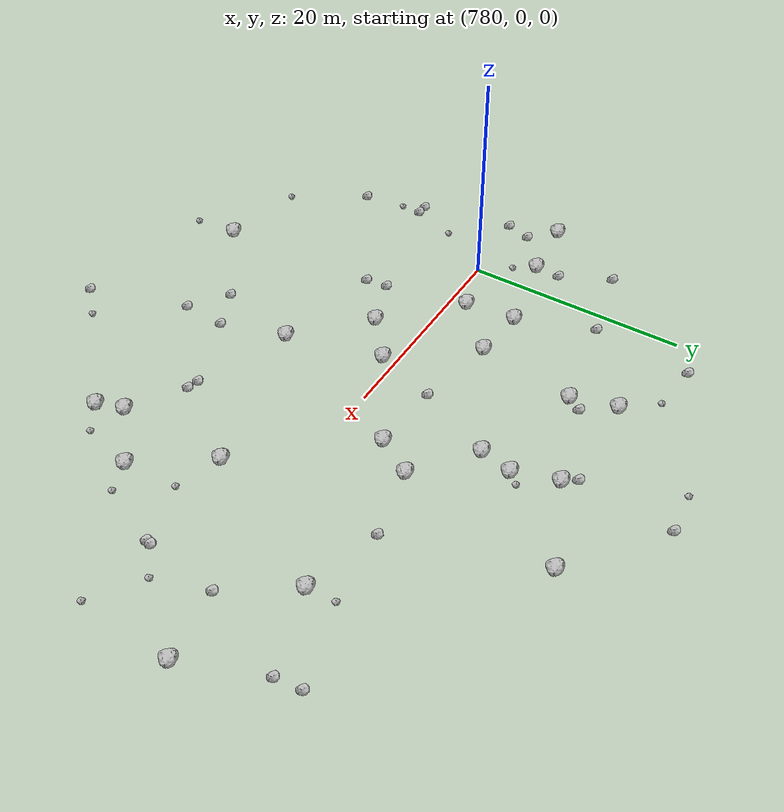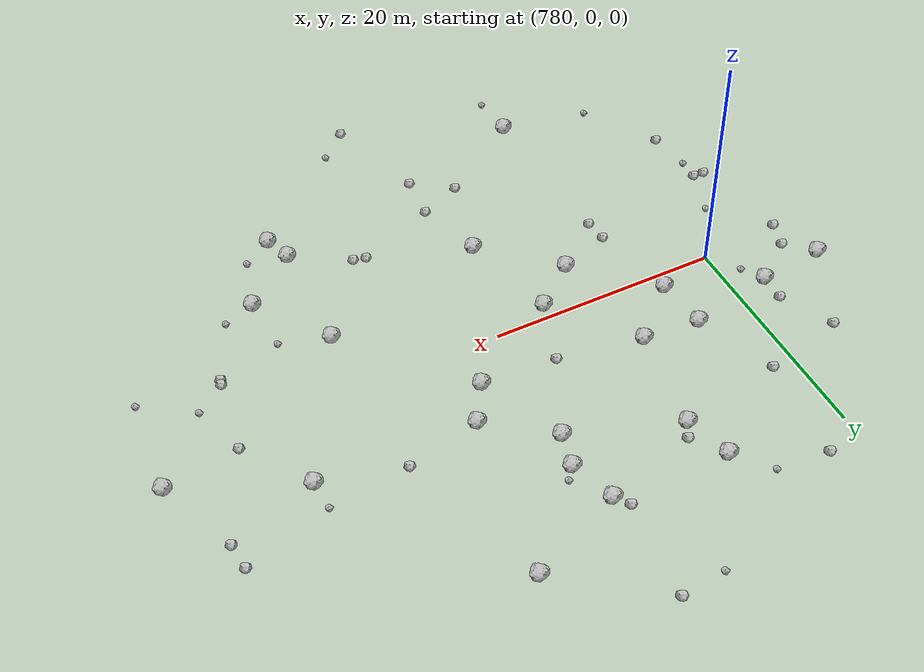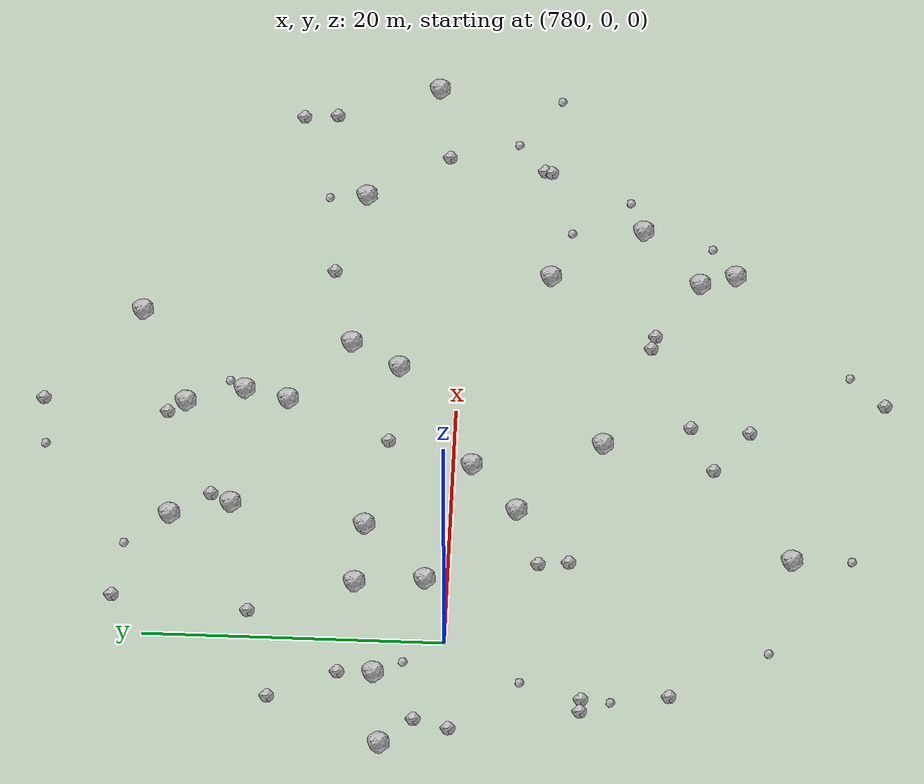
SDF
<sdf version="1.6">
 <world name="default">
  <include><uri>model://sun</uri></include>
  <model name="rock1_20_4">
   <include><uri>model://rock1</uri><pose>808.005294975532 21.88105893440632 0.5 0 0 0</pose></include>
  </model>
  <model name="rock1_20_5">
   <include><uri>model://rock1</uri><pose>795.1161935431173 -1.211626775830112 0.5 0 0 0</pose></include>
  </model>
  <model name="rock1_20_6">
   <include><uri>model://rock1</uri><pose>777.1363541725714 4.595713491415744 0.5 0 0 0</pose></include>
  </model>
  <model name="rock1_20_7">
   <include><uri>model://rock1</uri><pose>829.3146027466767 2.3546975872739893 0.5 0 0 0</pose></include>
  </model>
  <model name="rock1_20_8">
   <include><uri>model://rock1</uri><pose>784.7092967862494 6.2009895227435194 0.5 0 0 0</pose></include>
  </model>
  <model name="rock1_20_9">
   <include><uri>model://rock1</uri><pose>803.5739527494757 4.057093341304302 0.5 0 0 0</pose></include>
  </model>
  <model name="rock1_20_10">
   <include><uri>model://rock1</uri><pose>787.6287469421303 -22.864695126030263 0.5 0 0 0</pose></include>
  </model>
  <model name="rock1_20_11">
   <include><uri>model://rock1</uri><pose>790.0712022709254 18.883474183651785 0.5 0 0 0</pose></include>
  </model>
  <model name="rock1_20_12">
   <include><uri>model://rock1</uri><pose>812.1215779177766 -6.011123523359856 0.5 0 0 0</pose></include>
  </model>
  <model name="rock1_20_13">
   <include><uri>model://rock1</uri><pose>816.5313376923538 -12.299161744390705 0.5 0 0 0</pose></include>
  </model>
  <model name="rock1_20_14">
   <include><uri>model://rock1</uri><pose>799.9495576825748 18.410324494406943 0.5 0 0 0</pose></include>
  </model>
  <model name="rock1_20_15">
   <include><uri>model://rock1</uri><pose>791.2923565233662 -4.37045803544094 0.5 0 0 0</pose></include>
  </model>
  <model name="rock1_20_16">
   <include><uri>model://rock1</uri><pose>791.1790877870765 14.841674148097646 0.5 0 0 0</pose></include>
  </model>
  <model name="rock1_20_17">
   <include><uri>model://rock1</uri><pose>800.4227066664629 11.486003245103511 0.5 0 0 0</pose></include>
  </model>
  <model name="rock1_20_18">
   <include><uri>model://rock1</uri><pose>819.0993414048846 7.01554068330497 0.5 0 0 0</pose></include>
  </model>
  <model name="rock1_20_19">
   <include><uri>model://rock1</uri><pose>812.6319380371133 -18.733124779598803 0.5 0 0 0</pose></include>
  </model>
  <model name="rock1_20_20">
   <include><uri>model://rock1</uri><pose>811.8018737822158 -16.304487591812215 0.5 0 0 0</pose></include>
  </model>
  <model name="rock1_20_21">
   <include><uri>model://rock1</uri><pose>805.6434290917159 7.410183892722948 0.5 0 0 0</pose></include>
  </model>
  <model name="rock1_20_22">
   <include><uri>model://rock1</uri><pose>801.1986077073287 14.479339815743849 0.5 0 0 0</pose></include>
  </model>
  <model name="rock1_20_23">
   <include><uri>model://rock1</uri><pose>789.6602010457979 5.7776443397224355 0.5 0 0 0</pose></include>
  </model>
  <model name="rock1_20_24">
   <include><uri>model://rock1</uri><pose>785.1415866580385 1.5410929738104748 0.5 0 0 0</pose></include>
  </model>
  <model name="rock1_20_25">
   <include><uri>model://rock1</uri><pose>771.3286816281517 3.949985853152093 0.5 0 0 0</pose></include>
  </model>
  <model name="rock1_20_26">
   <include><uri>model://rock1</uri><pose>797.2485110307729 -10.004228783752534 0.5 0 0 0</pose></include>
  </model>
  <model name="rock2_20_0">
   <include><uri>model://rock2</uri><pose>797.0093255982463 4.478631640742066 0.3 0 0 0</pose></include>
  </model>
  <model name="rock2_20_1">
   <include><uri>model://rock2</uri><pose>799.0186564998713 19.585230140794053 0.3 0 0 0</pose></include>
  </model>
  <model name="rock2_20_2">
   <include><uri>model://rock2</uri><pose>798.6100396592211 -19.911984462713434 0.3 0 0 0</pose></include>
  </model>
  <model name="rock2_20_3">
   <include><uri>model://rock2</uri><pose>774.9493410605598 11.470628353879341 0.3 0 0 0</pose></include>
  </model>
  <model name="rock2_20_4">
   <include><uri>model://rock2</uri><pose>805.8846716411568 -13.080289601071502 0.3 0 0 0</pose></include>
  </model>
  <model name="rock2_20_5">
   <include><uri>model://rock2</uri><pose>782.042000874014 13.169729935680706 0.3 0 0 0</pose></include>
  </model>
  <model name="rock2_20_6">
   <include><uri>model://rock2</uri><pose>774.4548844876149 -9.092363481708329 0.3 0 0 0</pose></include>
  </model>
  <model name="rock2_20_7">
   <include><uri>model://rock2</uri><pose>821.8514961393576 -5.300244980857588 0.3 0 0 0</pose></include>
  </model>
  <model name="rock2_20_8">
   <include><uri>model://rock2</uri><pose>772.7243821511881 -0.5251403819988028 0.3 0 0 0</pose></include>
  </model>
  <model name="rock2_20_9">
   <include><uri>model://rock2</uri><pose>773.4136366775595 1.7931043231068173 0.3 0 0 0</pose></include>
  </model>
  <model name="rock2_20_10">
   <include><uri>model://rock2</uri><pose>783.0339686379896 22.275158702418643 0.3 0 0 0</pose></include>
  </model>
  <model name="rock2_20_11">
   <include><uri>model://rock2</uri><pose>806.9629711661289 -13.340798559444952 0.3 0 0 0</pose></include>
  </model>
  <model name="rock2_20_12">
   <include><uri>model://rock2</uri><pose>775.8934239655349 -14.910768823733973 0.3 0 0 0</pose></include>
  </model>
  <model name="rock2_20_13">
   <include><uri>model://rock2</uri><pose>791.936867038827 16.204510741537845 0.3 0 0 0</pose></include>
  </model>
  <model name="rock2_20_14">
   <include><uri>model://rock2</uri><pose>801.3512261679778 -29.037459527935976 0.3 0 0 0</pose></include>
  </model>
  <model name="rock2_20_15">
   <include><uri>model://rock2</uri><pose>821.7438816237864 -5.7675932100686715 0.3 0 0 0</pose></include>
  </model>
  <model name="rock2_20_16">
   <include><uri>model://rock2</uri><pose>799.9018086517898 28.068000015016658 0.3 0 0 0</pose></include>
  </model>
  <model name="rock2_20_17">
   <include><uri>model://rock2</uri><pose>786.7205098734686 -5.962671500116468 0.3 0 0 0</pose></include>
  </model>
  <model name="rock2_20_18">
   <include><uri>model://rock2</uri><pose>826.5639170504576 9.42868027260419 0.3 0 0 0</pose></include>
  </model>
  <model name="rock2_20_19">
   <include><uri>model://rock2</uri><pose>777.1425199306436 6.963221215017796 0.3 0 0 0</pose></include>
  </model>
  <model name="rock2_20_20">
   <include><uri>model://rock2</uri><pose>786.9294992248464 -7.999133958475898 0.3 0 0 0</pose></include>
  </model>
  <model name="rock2_20_21">
   <include><uri>model://rock2</uri><pose>822.9012154043238 1.3762547578193818 0.3 0 0 0</pose></include>
  </model>
  <model name="rock2_20_22">
   <include><uri>model://rock2</uri><pose>826.349563845322 11.767106395585841 0.3 0 0 0</pose></include>
  </model>
  <model name="rock2_20_23">
   <include><uri>model://rock2</uri><pose>775.4412315762461 -9.134888320908047 0.3 0 0 0</pose></include>
  </model>
  <model name="rock2_20_24">
   <include><uri>model://rock2</uri><pose>798.9312173118617 -15.906281233681923 0.3 0 0 0</pose></include>
  </model>
  <model name="rock2_20_25">
   <include><uri>model://rock2</uri><pose>795.2376993057505 -17.52119184865908 0.3 0 0 0</pose></include>
  </model>
  <model name="rock2_20_26">
   <include><uri>model://rock2</uri><pose>812.0598274185255 8.892040376500333 0.3 0 0 0</pose></include>
  </model>
  <model name="rock3_20_0">
   <include><uri>model://rock3</uri><pose>787.7761179889854 -26.898567749337825 0.2 0 0 0</pose></include>
  </model>
  <model name="rock3_20_1">
   <include><uri>model://rock3</uri><pose>779.7965250515753 -21.45141786619174 0.2 0 0 0</pose></include>
  </model>
  <model name="rock3_20_2">
   <include><uri>model://rock3</uri><pose>787.5381797567528 21.73938154850123 0.2 0 0 0</pose></include>
  </model>
  <model name="rock3_20_3">
   <include><uri>model://rock3</uri><pose>828.5572692933684 -6.331171852952984 0.2 0 0 0</pose></include>
  </model>
  <model name="rock3_20_4">
   <include><uri>model://rock3</uri><pose>815.1140998452001 -17.145646371431233 0.2 0 0 0</pose></include>
  </model>
  <model name="rock3_20_5">
   <include><uri>model://rock3</uri><pose>778.1587443179744 2.6569906826845084 0.2 0 0 0</pose></include>
  </model>
  <model name="rock3_20_6">
   <include><uri>model://rock3</uri><pose>824.3495966174738 -3.4492248875982767 0.2 0 0 0</pose></include>
  </model>
  <model name="rock3_20_7">
   <include><uri>model://rock3</uri><pose>775.3170099271327 -11.115337542755203 0.2 0 0 0</pose></include>
  </model>
  <model name="rock3_20_8">
   <include><uri>model://rock3</uri><pose>818.9102305836892 9.568373888218574 0.2 0 0 0</pose></include>
  </model>
  <model name="rock3_20_9">
   <include><uri>model://rock3</uri><pose>801.9823854617977 15.476343589574796 0.2 0 0 0</pose></include>
  </model>
  <model name="rock3_20_10">
   <include><uri>model://rock3</uri><pose>816.2204630780632 -7.395988928683128 0.2 0 0 0</pose></include>
  </model>
  <model name="rock3_20_11">
   <include><uri>model://rock3</uri><pose>795.9775587201792 27.62674781917071 0.2 0 0 0</pose></include>
  </model>
  <model name="rock3_20_12">
   <include><uri>model://rock3</uri><pose>819.1880177387961 -11.381967353700215 0.2 0 0 0</pose></include>
  </model>
  <model name="rock3_20_13">
   <include><uri>model://rock3</uri><pose>776.7366492656656 -5.0911950188521935 0.2 0 0 0</pose></include>
  </model>
  <model name="rock3_20_14">
   <include><uri>model://rock3</uri><pose>803.8150667488816 -26.693570415969923 0.2 0 0 0</pose></include>
  </model>
 </world>
</sdf>
